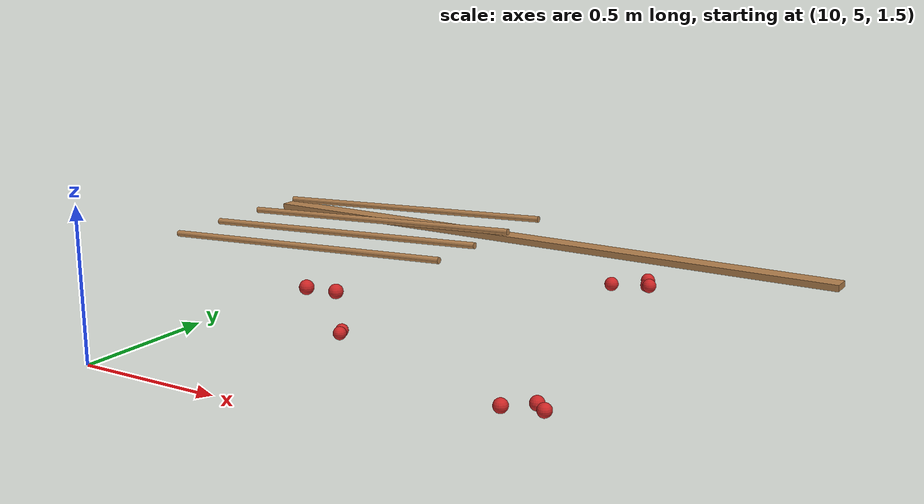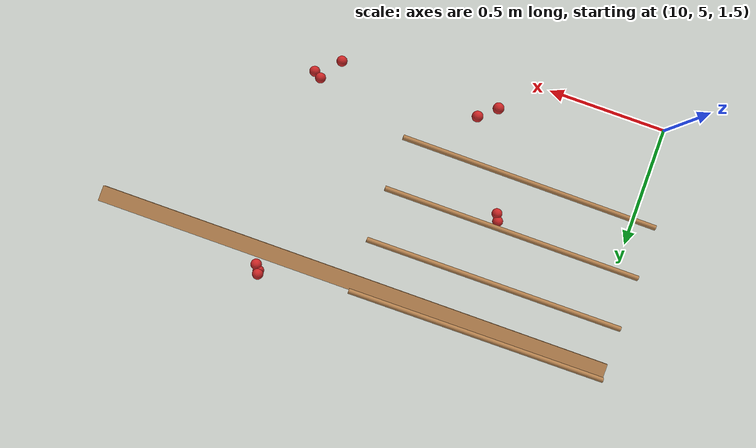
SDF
<sdf version="1.4">
 <model name="pergola">
  <link name="beam_58">
   <pose>11.0 6.0 1.81 0 0 0</pose>
   <collision name="collision"><geometry><box><size>2.0 0.06 0.02</size></box></geometry></collision>
   <visual name="visual">
    <geometry><box><size>2.0 0.06 0.02</size></box></geometry>
    <material><script><name>Gazebo/Wood</name></script></material>
   </visual>
   <inertial>
    <mass>5</mass>
    <inertia>
     <ixx>0.0016666666666666668</ixx>
     <ixy>0.0</ixy>
     <ixz>0.0</ixz>
     <iyy>1.6681666666666664</iyy>
     <iyz>0.0</iyz>
     <izz>1.6668333333333332</izz>
    </inertia>
   </inertial>
  </link>
  <link name="vine_1054">
   <pose>10.5 5.430000000000001 1.85 0 1.5208379310729538 0</pose>
   <collision name="collision">
    <geometry><cylinder><radius>0.01</radius><length>1.0012492197250393</length></cylinder></geometry>
   </collision>
   <visual name="visual">
    <geometry><cylinder><radius>0.01</radius><length>1.0012492197250393</length></cylinder></geometry>
    <material><script><name>Gazebo/WoodFloor</name></script></material>
   </visual>
   <inertial>
    <mass>5</mass>
    <inertia>
     <ixx>0.41783333333333345</ixx>
     <ixy>0.0</ixy>
     <ixz>0.0</ixz>
     <iyy>0.41783333333333345</iyy>
     <iyz>0.0</iyz>
     <izz>0.00025</izz>
    </inertia>
   </inertial>
  </link>
  <link name="vine_1056">
   <pose>10.5 5.630000000000001 1.85 0 1.5208379310729538 0</pose>
   <collision name="collision">
    <geometry><cylinder><radius>0.01</radius><length>1.0012492197250393</length></cylinder></geometry>
   </collision>
   <visual name="visual">
    <geometry><cylinder><radius>0.01</radius><length>1.0012492197250393</length></cylinder></geometry>
    <material><script><name>Gazebo/WoodFloor</name></script></material>
   </visual>
   <inertial>
    <mass>5</mass>
    <inertia>
     <ixx>0.41783333333333345</ixx>
     <ixy>0.0</ixy>
     <ixz>0.0</ixz>
     <iyy>0.41783333333333345</iyy>
     <iyz>0.0</iyz>
     <izz>0.00025</izz>
    </inertia>
   </inertial>
  </link>
  <link name="vine_1058">
   <pose>10.5 5.830000000000001 1.85 0 1.5208379310729538 0</pose>
   <collision name="collision">
    <geometry><cylinder><radius>0.01</radius><length>1.0012492197250393</length></cylinder></geometry>
   </collision>
   <visual name="visual">
    <geometry><cylinder><radius>0.01</radius><length>1.0012492197250393</length></cylinder></geometry>
    <material><script><name>Gazebo/WoodFloor</name></script></material>
   </visual>
   <inertial>
    <mass>5</mass>
    <inertia>
     <ixx>0.41783333333333345</ixx>
     <ixy>0.0</ixy>
     <ixz>0.0</ixz>
     <iyy>0.41783333333333345</iyy>
     <iyz>0.0</iyz>
     <izz>0.00025</izz>
    </inertia>
   </inertial>
  </link>
  <link name="vine_1060">
   <pose>10.5 6.03 1.85 0 1.5208379310729538 0</pose>
   <collision name="collision">
    <geometry><cylinder><radius>0.01</radius><length>1.0012492197250393</length></cylinder></geometry>
   </collision>
   <visual name="visual">
    <geometry><cylinder><radius>0.01</radius><length>1.0012492197250393</length></cylinder></geometry>
    <material><script><name>Gazebo/WoodFloor</name></script></material>
   </visual>
   <inertial>
    <mass>5</mass>
    <inertia>
     <ixx>0.41783333333333345</ixx>
     <ixy>0.0</ixy>
     <ixz>0.0</ixz>
     <iyy>0.41783333333333345</iyy>
     <iyz>0.0</iyz>
     <izz>0.00025</izz>
    </inertia>
   </inertial>
  </link>
  <link name="fruit_100">
   <pose>11.28073913197152 5.997598544992402 1.7085447927694424 0 0 0</pose>
   <collision name="fruit_collision_100"><geometry><sphere><radius>0.022</radius></sphere></geometry></collision>
   <visual name="visual">
    <geometry><sphere><radius>0.022</radius></sphere></geometry>
    <material><script><name>Gazebo/Red</name></script></material>
   </visual>
   <inertial>
    <mass>0.05</mass>
    <inertia>
     <ixx>9.679999999999999e-06</ixx>
     <ixy>0.0</ixy>
     <ixz>0.0</ixz>
     <iyy>9.679999999999999e-06</iyy>
     <iyz>0.0</iyz>
     <izz>9.679999999999999e-06</izz>
    </inertia>
   </inertial>
   <sensor name="fruit_contact_100" type="contact">
    <contact><collision>fruit_collision_100</collision></contact>
   </sensor>
  </link>
  <link name="fruit_302">
   <pose>11.346930053935653 5.186200680241853 1.5809675589182843 0 0 0</pose>
   <collision name="fruit_collision_302"><geometry><sphere><radius>0.022</radius></sphere></geometry></collision>
   <visual name="visual">
    <geometry><sphere><radius>0.022</radius></sphere></geometry>
    <material><script><name>Gazebo/Red</name></script></material>
   </visual>
   <inertial>
    <mass>0.05</mass>
    <inertia>
     <ixx>9.679999999999999e-06</ixx>
     <ixy>0.0</ixy>
     <ixz>0.0</ixz>
     <iyy>9.679999999999999e-06</iyy>
     <iyz>0.0</iyz>
     <izz>9.679999999999999e-06</izz>
    </inertia>
   </inertial>
   <sensor name="fruit_contact_302" type="contact">
    <contact><collision>fruit_collision_302</collision></contact>
   </sensor>
  </link>
  <link name="fruit_304">
   <pose>10.698774804856129 5.1987913349370105 1.8061966643949674 0 0 0</pose>
   <collision name="fruit_collision_304"><geometry><sphere><radius>0.022</radius></sphere></geometry></collision>
   <visual name="visual">
    <geometry><sphere><radius>0.022</radius></sphere></geometry>
    <material><script><name>Gazebo/Red</name></script></material>
   </visual>
   <inertial>
    <mass>0.05</mass>
    <inertia>
     <ixx>9.679999999999999e-06</ixx>
     <ixy>0.0</ixy>
     <ixz>0.0</ixz>
     <iyy>9.679999999999999e-06</iyy>
     <iyz>0.0</iyz>
     <izz>9.679999999999999e-06</izz>
    </inertia>
   </inertial>
   <sensor name="fruit_contact_304" type="contact">
    <contact><collision>fruit_collision_304</collision></contact>
   </sensor>
  </link>
  <link name="fruit_412">
   <pose>11.363073659033935 6.088086065117367 1.6940595363471012 0 0 0</pose>
   <collision name="fruit_collision_412"><geometry><sphere><radius>0.022</radius></sphere></geometry></collision>
   <visual name="visual">
    <geometry><sphere><radius>0.022</radius></sphere></geometry>
    <material><script><name>Gazebo/Red</name></script></material>
   </visual>
   <inertial>
    <mass>0.05</mass>
    <inertia>
     <ixx>9.679999999999999e-06</ixx>
     <ixy>0.0</ixy>
     <ixz>0.0</ixz>
     <iyy>9.679999999999999e-06</iyy>
     <iyz>0.0</iyz>
     <izz>9.679999999999999e-06</izz>
    </inertia>
   </inertial>
   <sensor name="fruit_contact_412" type="contact">
    <contact><collision>fruit_collision_412</collision></contact>
   </sensor>
  </link>
  <link name="fruit_447">
   <pose>10.543325183390856 5.558333313346706 1.5410582322239978 0 0 0</pose>
   <collision name="fruit_collision_447"><geometry><sphere><radius>0.022</radius></sphere></geometry></collision>
   <visual name="visual">
    <geometry><sphere><radius>0.022</radius></sphere></geometry>
    <material><script><name>Gazebo/Red</name></script></material>
   </visual>
   <inertial>
    <mass>0.05</mass>
    <inertia>
     <ixx>9.679999999999999e-06</ixx>
     <ixy>0.0</ixy>
     <ixz>0.0</ixz>
     <iyy>9.679999999999999e-06</iyy>
     <iyz>0.0</iyz>
     <izz>9.679999999999999e-06</izz>
    </inertia>
   </inertial>
   <sensor name="fruit_contact_447" type="contact">
    <contact><collision>fruit_collision_447</collision></contact>
   </sensor>
  </link>
  <link name="fruit_448">
   <pose>11.407830824546716 5.278507285355762 1.5702360516172913 0 0 0</pose>
   <collision name="fruit_collision_448"><geometry><sphere><radius>0.022</radius></sphere></geometry></collision>
   <visual name="visual">
    <geometry><sphere><radius>0.022</radius></sphere></geometry>
    <material><script><name>Gazebo/Red</name></script></material>
   </visual>
   <inertial>
    <mass>0.05</mass>
    <inertia>
     <ixx>9.679999999999999e-06</ixx>
     <ixy>0.0</ixy>
     <ixz>0.0</ixz>
     <iyy>9.679999999999999e-06</iyy>
     <iyz>0.0</iyz>
     <izz>9.679999999999999e-06</izz>
    </inertia>
   </inertial>
   <sensor name="fruit_contact_448" type="contact">
    <contact><collision>fruit_collision_448</collision></contact>
   </sensor>
  </link>
  <link name="fruit_465">
   <pose>10.52999079871977 5.5880497360581005 1.5402584616574266 0 0 0</pose>
   <collision name="fruit_collision_465"><geometry><sphere><radius>0.022</radius></sphere></geometry></collision>
   <visual name="visual">
    <geometry><sphere><radius>0.022</radius></sphere></geometry>
    <material><script><name>Gazebo/Red</name></script></material>
   </visual>
   <inertial>
    <mass>0.05</mass>
    <inertia>
     <ixx>9.679999999999999e-06</ixx>
     <ixy>0.0</ixy>
     <ixz>0.0</ixz>
     <iyy>9.679999999999999e-06</iyy>
     <iyz>0.0</iyz>
     <izz>9.679999999999999e-06</izz>
    </inertia>
   </inertial>
   <sensor name="fruit_contact_465" type="contact">
    <contact><collision>fruit_collision_465</collision></contact>
   </sensor>
  </link>
  <link name="fruit_717">
   <pose>11.358960228186525 6.100426733597423 1.7070091971186225 0 0 0</pose>
   <collision name="fruit_collision_717"><geometry><sphere><radius>0.022</radius></sphere></geometry></collision>
   <visual name="visual">
    <geometry><sphere><radius>0.022</radius></sphere></geometry>
    <material><script><name>Gazebo/Red</name></script></material>
   </visual>
   <inertial>
    <mass>0.05</mass>
    <inertia>
     <ixx>9.679999999999999e-06</ixx>
     <ixy>0.0</ixy>
     <ixz>0.0</ixz>
     <iyy>9.679999999999999e-06</iyy>
     <iyz>0.0</iyz>
     <izz>9.679999999999999e-06</izz>
    </inertia>
   </inertial>
   <sensor name="fruit_contact_717" type="contact">
    <contact><collision>fruit_collision_717</collision></contact>
   </sensor>
  </link>
  <link name="fruit_743">
   <pose>10.762592984007961 5.251671672337934 1.7905053532111732 0 0 0</pose>
   <collision name="fruit_collision_743"><geometry><sphere><radius>0.022</radius></sphere></geometry></collision>
   <visual name="visual">
    <geometry><sphere><radius>0.022</radius></sphere></geometry>
    <material><script><name>Gazebo/Red</name></script></material>
   </visual>
   <inertial>
    <mass>0.05</mass>
    <inertia>
     <ixx>9.679999999999999e-06</ixx>
     <ixy>0.0</ixy>
     <ixz>0.0</ixz>
     <iyy>9.679999999999999e-06</iyy>
     <iyz>0.0</iyz>
     <izz>9.679999999999999e-06</izz>
    </inertia>
   </inertial>
   <sensor name="fruit_contact_743" type="contact">
    <contact><collision>fruit_collision_743</collision></contact>
   </sensor>
  </link>
  <link name="fruit_943">
   <pose>11.378128699873924 6.068043388372009 1.6995469559425276 0 0 0</pose>
   <collision name="fruit_collision_943"><geometry><sphere><radius>0.022</radius></sphere></geometry></collision>
   <visual name="visual">
    <geometry><sphere><radius>0.022</radius></sphere></geometry>
    <material><script><name>Gazebo/Red</name></script></material>
   </visual>
   <inertial>
    <mass>0.05</mass>
    <inertia>
     <ixx>9.679999999999999e-06</ixx>
     <ixy>0.0</ixy>
     <ixz>0.0</ixz>
     <iyy>9.679999999999999e-06</iyy>
     <iyz>0.0</iyz>
     <izz>9.679999999999999e-06</izz>
    </inertia>
   </inertial>
   <sensor name="fruit_contact_943" type="contact">
    <contact><collision>fruit_collision_943</collision></contact>
   </sensor>
  </link>
  <link name="fruit_951">
   <pose>11.440498711356911 5.259245556916291 1.56262277240985 0 0 0</pose>
   <collision name="fruit_collision_951"><geometry><sphere><radius>0.022</radius></sphere></geometry></collision>
   <visual name="visual">
    <geometry><sphere><radius>0.022</radius></sphere></geometry>
    <material><script><name>Gazebo/Red</name></script></material>
   </visual>
   <inertial>
    <mass>0.05</mass>
    <inertia>
     <ixx>9.679999999999999e-06</ixx>
     <ixy>0.0</ixy>
     <ixz>0.0</ixz>
     <iyy>9.679999999999999e-06</iyy>
     <iyz>0.0</iyz>
     <izz>9.679999999999999e-06</izz>
    </inertia>
   </inertial>
   <sensor name="fruit_contact_951" type="contact">
    <contact><collision>fruit_collision_951</collision></contact>
   </sensor>
  </link>
 </model>
</sdf>
